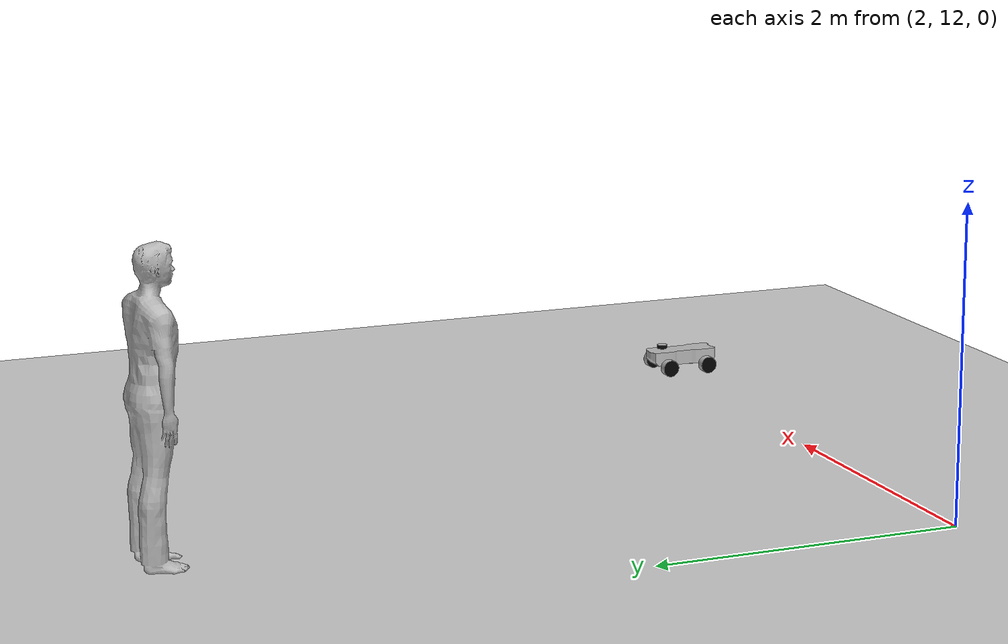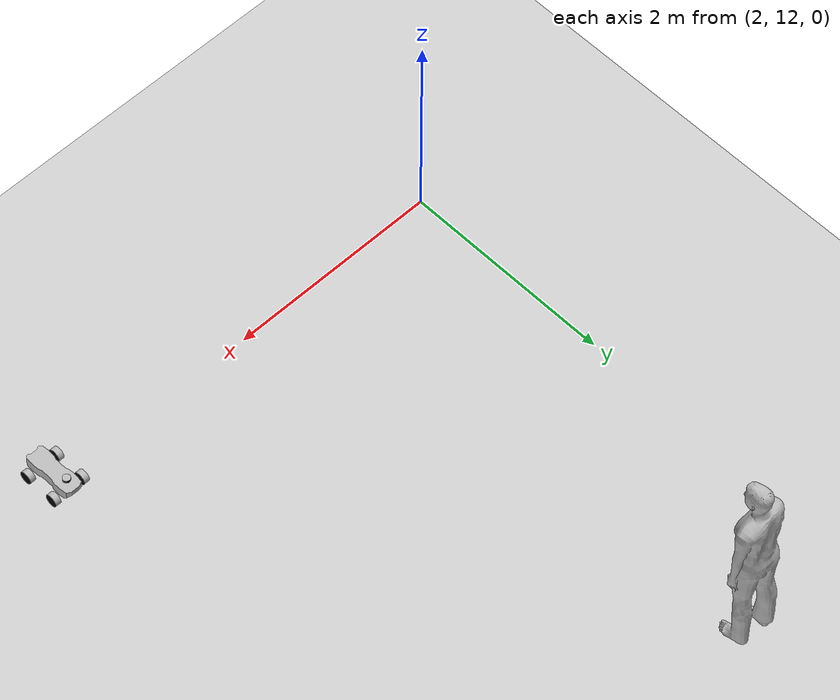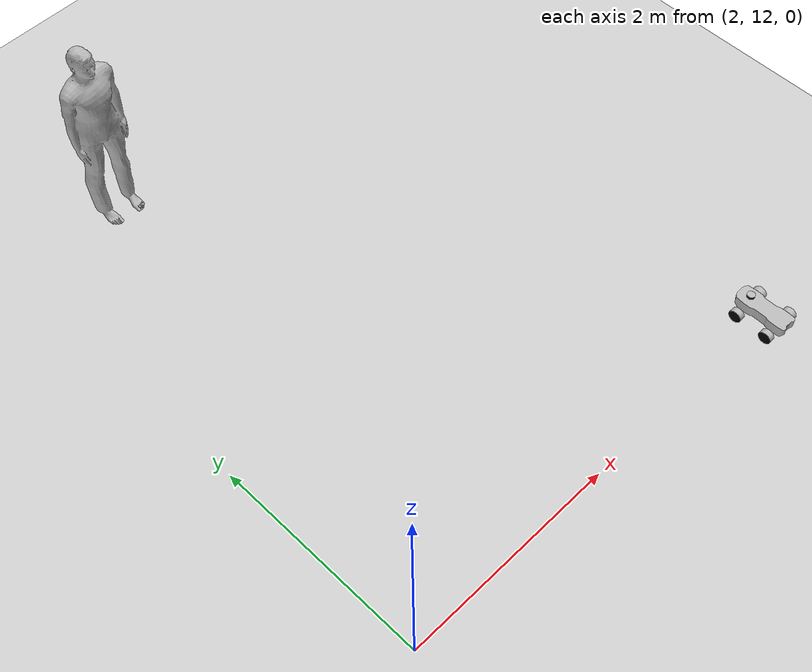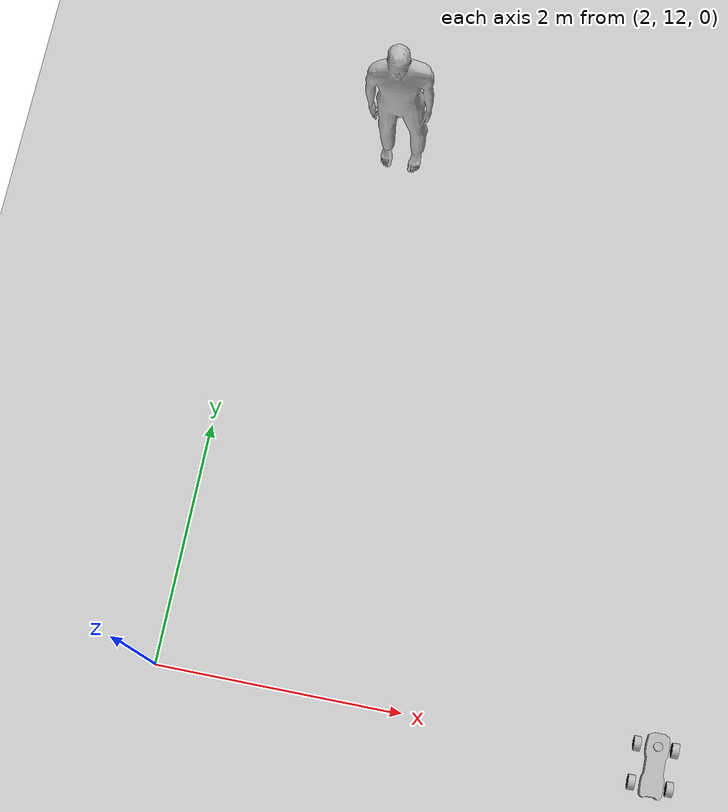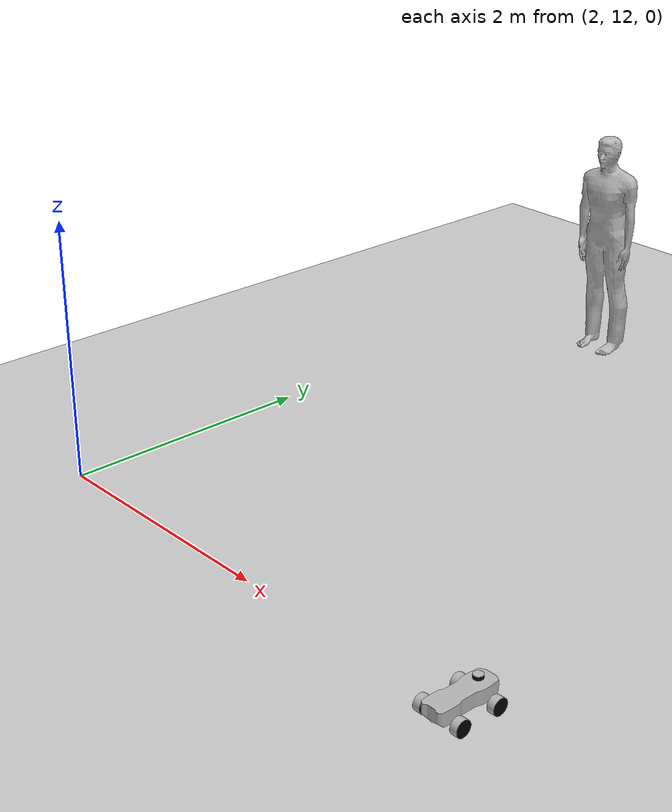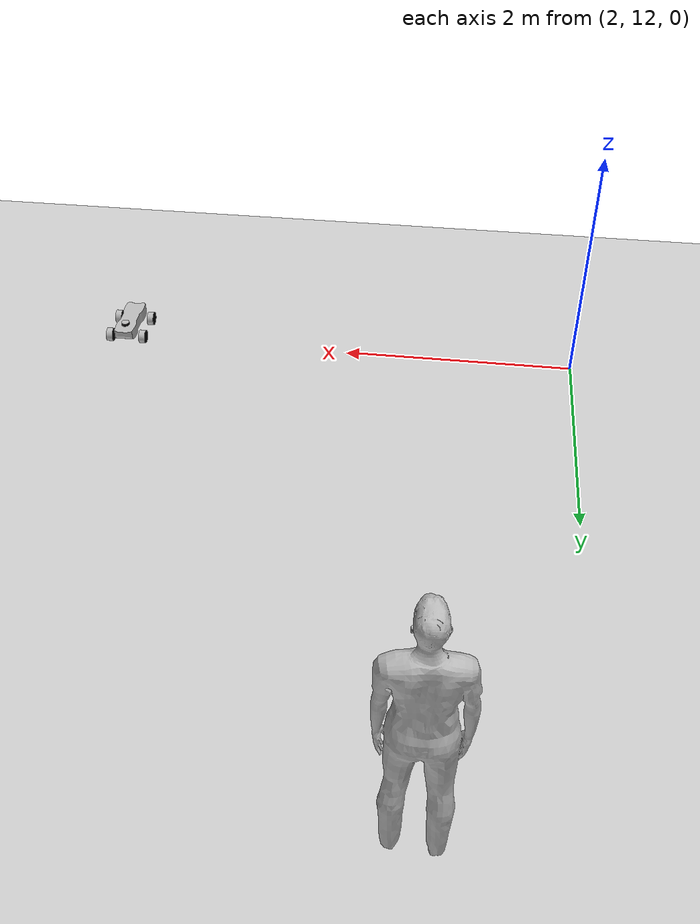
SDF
<sdf version="1.6">
 <world name="default">
  <model name="ground_plane">
   <static>1</static>
   <link name="link">
    <collision name="collision">
     <geometry><plane><normal>0 0 1</normal><size>100 100</size></plane></geometry>
     <surface><friction><ode><mu>100</mu><mu2>50</mu2></ode></friction></surface>
    </collision>
    <visual name="visual">
     <cast_shadows>0</cast_shadows>
     <geometry><plane><normal>0 0 1</normal><size>100 100</size></plane></geometry>
     <material>
      <script><uri>file://media/materials/scripts/gazebo.material</uri><name>Gazebo/Grey</name></script>
     </material>
    </visual>
   </link>
  </model>
  <model name="robot_4">
   <link name="base_link">
    <inertial>
     <mass>5</mass>
     <inertia>
      <ixx>0.0416667</ixx>
      <ixy>0</ixy>
      <ixz>0</ixz>
      <iyy>0.108333</iyy>
      <iyz>0</iyz>
      <izz>0.141667</izz>
     </inertia>
    </inertial>
    <collision name="base_link_collision"><geometry><box><size>0.5 0.3 0.1</size></box></geometry></collision>
    <collision name="base_link_fixed_joint_lump__kinect_link_collision_1">
     <pose>0.145 0 0.17 0 -0 0</pose>
     <geometry><box><size>0.07 0.3 0.09</size></box></geometry>
    </collision>
    <visual name="base_link_visual">
     <geometry>
      <mesh>
       <scale>1 1 1</scale>
       <uri>/home/wind/qingzhou_simulation/src/qingzhou_sim/qingzhou_description/meshes/base_link.dae</uri>
      </mesh>
     </geometry>
    </visual>
    <visual name="base_link_fixed_joint_lump__ydlidar_link_visual_1">
     <pose>0.145 0 0.1285 0 0 -1.57079</pose>
     <geometry>
      <mesh>
       <scale>1 1 1</scale>
       <uri>/home/wind/qingzhou_simulation/src/qingzhou_sim/qingzhou_description/meshes/ydlidar_x4.dae</uri>
      </mesh>
     </geometry>
     <material><script><uri>__default__</uri><name>__default__</name></script></material>
    </visual>
    <sensor name="camera" type="camera">
     <update_rate>30</update_rate>
     <camera name="camera">
      <horizontal_fov>1.39626</horizontal_fov>
      <image><width>800</width><height>800</height><format>R8G8B8</format></image>
      <clip><near>0.02</near><far>300</far></clip>
      <noise><type>gaussian</type><mean>0</mean><stddev>0.007</stddev></noise>
     </camera>
     <plugin name="camera_controller" filename="libgazebo_ros_camera.so">
      <alwaysOn>1</alwaysOn>
      <updateRate>0.0</updateRate>
      <cameraName>camera_link</cameraName>
      <imageTopicName>image_raw</imageTopicName>
      <cameraInfoTopicName>camera_info</cameraInfoTopicName>
      <frameName>camera_link</frameName>
      <hackBaseline>0.07</hackBaseline>
      <distortionK1>0.0</distortionK1>
      <distortionK2>0.0</distortionK2>
      <distortionK3>0.0</distortionK3>
      <distortionT1>0.0</distortionT1>
      <distortionT2>0.0</distortionT2>
      <robotNamespace>/robot_4/</robotNamespace>
     </plugin>
     <pose>0.3 0 0.075 0 -0 0</pose>
    </sensor>
    <sensor name="imu_sensor" type="imu">
     <always_on>1</always_on>
     <update_rate>100</update_rate>
     <visualize>1</visualize>
     <topic>__default_topic__</topic>
     <plugin name="imu_plugin" filename="libgazebo_ros_imu_sensor.so">
      <topicName>imu</topicName>
      <bodyName>imu_link</bodyName>
      <updateRateHZ>100.0</updateRateHZ>
      <gaussianNoise>0.0</gaussianNoise>
      <xyzOffset>0 0 0</xyzOffset>
      <rpyOffset>0 0 0</rpyOffset>
      <frameName>imu_link</frameName>
      <robotNamespace>/robot_4/</robotNamespace>
     </plugin>
     <pose>-0.08 0 0.095 0 0 -1.57079</pose>
    </sensor>
    <sensor name="kinect" type="depth">
     <always_on>1</always_on>
     <update_rate>20</update_rate>
     <camera name="__default__">
      <horizontal_fov>1.0472</horizontal_fov>
      <image><format>R8G8B8</format><width>640</width><height>480</height></image>
      <clip><near>0.05</near><far>300</far></clip>
     </camera>
     <plugin name="kinect_camera_controller" filename="libgazebo_ros_openni_kinect.so">
      <cameraName>kinect</cameraName>
      <alwaysOn>1</alwaysOn>
      <updateRate>10</updateRate>
      <imageTopicName>rgb/image_raw</imageTopicName>
      <depthImageTopicName>depth/image_raw</depthImageTopicName>
      <pointCloudTopicName>depth/points</pointCloudTopicName>
      <cameraInfoTopicName>rgb/camera_info</cameraInfoTopicName>
      <depthImageCameraInfoTopicName>depth/camera_info</depthImageCameraInfoTopicName>
      <frameName>kinect_frame_optical</frameName>
      <baseline>0.1</baseline>
      <distortion_k1>0.0</distortion_k1>
      <distortion_k2>0.0</distortion_k2>
      <distortion_k3>0.0</distortion_k3>
      <distortion_t1>0.0</distortion_t1>
      <distortion_t2>0.0</distortion_t2>
      <pointCloudCutoff>0.4</pointCloudCutoff>
      <robotNamespace>/robot_4/</robotNamespace>
     </plugin>
     <pose>0.145 0 0.17 0 -0 0</pose>
    </sensor>
    <sensor name="rplidar" type="ray">
     <visualize>0</visualize>
     <update_rate>5.5</update_rate>
     <ray>
      <scan>
       <horizontal>
        <samples>360</samples>
        <resolution>1</resolution>
        <min_angle>-3</min_angle>
        <max_angle>3</max_angle>
       </horizontal>
       <vertical><samples>1</samples><min_angle>0</min_angle><max_angle>0</max_angle></vertical>
      </scan>
      <range><min>0.1</min><max>20</max><resolution>0.01</resolution></range>
      <noise><type>gaussian</type><mean>0</mean><stddev>0.01</stddev></noise>
     </ray>
     <plugin name="gazebo_rplidar" filename="libgazebo_ros_laser.so">
      <topicName>scan</topicName>
      <frameName>ydlidar_link</frameName>
      <robotNamespace>/robot_4/</robotNamespace>
     </plugin>
     <pose>0.145 0 0.115 0 -0 0</pose>
    </sensor>
   </link>
   <link name="front_left_steer_link">
    <pose>0.15 0.15 0.13 0 -0 0</pose>
    <inertial>
     <mass>1</mass>
     <inertia>
      <ixx>0.000658333</ixx>
      <ixy>0</ixy>
      <ixz>0</ixz>
      <iyy>0.000658333</iyy>
      <iyz>0</iyz>
      <izz>0.00125</izz>
     </inertia>
    </inertial>
    <collision name="front_left_steer_link_collision">
     <geometry><cylinder><length>0.0001</length><radius>0.0001</radius></cylinder></geometry>
    </collision>
    <visual name="front_left_steer_link_visual">
     <geometry><cylinder><length>0.0001</length><radius>0.0001</radius></cylinder></geometry>
    </visual>
   </link>
   <joint name="front_left_steer_joint" type="revolute">
    <child>front_left_steer_link</child>
    <parent>base_link</parent>
    <axis>
     <xyz>0 0 1</xyz>
     <limit><lower>-0.785398</lower><upper>0.785398</upper><effort>10</effort><velocity>5</velocity></limit>
     <dynamics><spring_reference>0</spring_reference><spring_stiffness>0</spring_stiffness></dynamics>
     <use_parent_model_frame>1</use_parent_model_frame>
    </axis>
   </joint>
   <link name="front_left_wheel_link">
    <pose>0.15 0.15 0 -1.5708 0 0</pose>
    <inertial>
     <mass>1</mass>
     <inertia>
      <ixx>0.00355833</ixx>
      <ixy>0</ixy>
      <ixz>0</ixz>
      <iyy>0.00355833</iyy>
      <iyz>0</iyz>
      <izz>0.00605</izz>
     </inertia>
    </inertial>
    <collision name="front_left_wheel_link_collision">
     <geometry><cylinder><length>0.08</length><radius>0.11</radius></cylinder></geometry>
    </collision>
    <visual name="front_left_wheel_link_visual">
     <geometry>
      <mesh>
       <scale>1 1 1</scale>
       <uri>/home/wind/qingzhou_simulation/src/qingzhou_sim/qingzhou_description/meshes/wheel.dae</uri>
      </mesh>
     </geometry>
    </visual>
   </link>
   <joint name="front_left_wheel_joint" type="revolute">
    <child>front_left_wheel_link</child>
    <parent>front_left_steer_link</parent>
    <axis>
     <xyz>0 1 0</xyz>
     <limit><lower>-1e+16</lower><upper>1e+16</upper></limit>
     <dynamics><spring_reference>0</spring_reference><spring_stiffness>0</spring_stiffness></dynamics>
     <use_parent_model_frame>1</use_parent_model_frame>
    </axis>
   </joint>
   <link name="front_right_steer_link">
    <pose>0.15 -0.15 0.13 0 -0 0</pose>
    <inertial>
     <mass>1</mass>
     <inertia>
      <ixx>0.000658333</ixx>
      <ixy>0</ixy>
      <ixz>0</ixz>
      <iyy>0.000658333</iyy>
      <iyz>0</iyz>
      <izz>0.00125</izz>
     </inertia>
    </inertial>
    <collision name="front_right_steer_link_collision">
     <geometry><cylinder><length>0.0001</length><radius>0.0001</radius></cylinder></geometry>
    </collision>
    <visual name="front_right_steer_link_visual">
     <geometry><cylinder><length>0.0001</length><radius>0.0001</radius></cylinder></geometry>
    </visual>
   </link>
   <joint name="front_right_steer_joint" type="revolute">
    <child>front_right_steer_link</child>
    <parent>base_link</parent>
    <axis>
     <xyz>0 0 1</xyz>
     <limit><lower>-0.785398</lower><upper>0.785398</upper><effort>10</effort><velocity>5</velocity></limit>
     <dynamics><spring_reference>0</spring_reference><spring_stiffness>0</spring_stiffness></dynamics>
     <use_parent_model_frame>1</use_parent_model_frame>
    </axis>
   </joint>
   <link name="front_right_wheel_link">
    <pose>0.15 -0.15 0 -1.5708 0 0</pose>
    <inertial>
     <mass>1</mass>
     <inertia>
      <ixx>0.00355833</ixx>
      <ixy>0</ixy>
      <ixz>0</ixz>
      <iyy>0.00355833</iyy>
      <iyz>0</iyz>
      <izz>0.00605</izz>
     </inertia>
    </inertial>
    <collision name="front_right_wheel_link_collision">
     <geometry><cylinder><length>0.08</length><radius>0.11</radius></cylinder></geometry>
    </collision>
    <visual name="front_right_wheel_link_visual">
     <geometry>
      <mesh>
       <scale>1 1 1</scale>
       <uri>/home/wind/qingzhou_simulation/src/qingzhou_sim/qingzhou_description/meshes/wheel.dae</uri>
      </mesh>
     </geometry>
    </visual>
   </link>
   <joint name="front_right_wheel_joint" type="revolute">
    <child>front_right_wheel_link</child>
    <parent>front_right_steer_link</parent>
    <axis>
     <xyz>0 1 0</xyz>
     <limit><lower>-1e+16</lower><upper>1e+16</upper></limit>
     <dynamics><spring_reference>0</spring_reference><spring_stiffness>0</spring_stiffness></dynamics>
     <use_parent_model_frame>1</use_parent_model_frame>
    </axis>
   </joint>
   <link name="front_steer_link">
    <pose>0.2 0 0.13 0 -0 0</pose>
    <inertial>
     <mass>1</mass>
     <inertia>
      <ixx>0.000658333</ixx>
      <ixy>0</ixy>
      <ixz>0</ixz>
      <iyy>0.000658333</iyy>
      <iyz>0</iyz>
      <izz>0.00125</izz>
     </inertia>
    </inertial>
    <collision name="front_steer_link_collision">
     <geometry><cylinder><length>0.02</length><radius>0.05</radius></cylinder></geometry>
    </collision>
    <visual name="front_steer_link_visual">
     <geometry><cylinder><length>1e-06</length><radius>1e-06</radius></cylinder></geometry>
    </visual>
   </link>
   <joint name="front_steer_joint" type="revolute">
    <child>front_steer_link</child>
    <parent>base_link</parent>
    <axis>
     <xyz>0 0 1</xyz>
     <limit><lower>-3.14159</lower><upper>3.14159</upper><effort>10</effort><velocity>5</velocity></limit>
     <dynamics><spring_reference>0</spring_reference><spring_stiffness>0</spring_stiffness></dynamics>
     <use_parent_model_frame>1</use_parent_model_frame>
    </axis>
   </joint>
   <link name="rear_left_wheel_link">
    <pose>-0.15 0.15 0 -1.5708 0 0</pose>
    <inertial>
     <mass>1</mass>
     <inertia>
      <ixx>0.00355833</ixx>
      <ixy>0</ixy>
      <ixz>0</ixz>
      <iyy>0.00355833</iyy>
      <iyz>0</iyz>
      <izz>0.00605</izz>
     </inertia>
    </inertial>
    <collision name="rear_left_wheel_link_collision">
     <geometry><cylinder><length>0.08</length><radius>0.11</radius></cylinder></geometry>
    </collision>
    <visual name="rear_left_wheel_link_visual">
     <geometry>
      <mesh>
       <scale>1 1 1</scale>
       <uri>/home/wind/qingzhou_simulation/src/qingzhou_sim/qingzhou_description/meshes/wheel.dae</uri>
      </mesh>
     </geometry>
    </visual>
   </link>
   <joint name="rear_left_wheel_joint" type="revolute">
    <child>rear_left_wheel_link</child>
    <parent>base_link</parent>
    <axis>
     <xyz>0 1 0</xyz>
     <limit><lower>-1e+16</lower><upper>1e+16</upper></limit>
     <dynamics><spring_reference>0</spring_reference><spring_stiffness>0</spring_stiffness></dynamics>
     <use_parent_model_frame>1</use_parent_model_frame>
    </axis>
   </joint>
   <link name="rear_right_wheel_link">
    <pose>-0.15 -0.15 0 -1.5708 0 0</pose>
    <inertial>
     <mass>1</mass>
     <inertia>
      <ixx>0.00355833</ixx>
      <ixy>0</ixy>
      <ixz>0</ixz>
      <iyy>0.00355833</iyy>
      <iyz>0</iyz>
      <izz>0.00605</izz>
     </inertia>
    </inertial>
    <collision name="rear_right_wheel_link_collision">
     <geometry><cylinder><length>0.08</length><radius>0.11</radius></cylinder></geometry>
    </collision>
    <visual name="rear_right_wheel_link_visual">
     <geometry>
      <mesh>
       <scale>1 1 1</scale>
       <uri>/home/wind/qingzhou_simulation/src/qingzhou_sim/qingzhou_description/meshes/wheel.dae</uri>
      </mesh>
     </geometry>
    </visual>
   </link>
   <joint name="rear_right_wheel_joint" type="revolute">
    <child>rear_right_wheel_link</child>
    <parent>base_link</parent>
    <axis>
     <xyz>0 1 0</xyz>
     <limit><lower>-1e+16</lower><upper>1e+16</upper></limit>
     <dynamics><spring_reference>0</spring_reference><spring_stiffness>0</spring_stiffness></dynamics>
     <use_parent_model_frame>1</use_parent_model_frame>
    </axis>
   </joint>
   <link name="rear_wheel_link">
    <pose>-0.2 0 0 -1.5708 0 0</pose>
    <inertial>
     <mass>0.03125</mass>
     <inertia>
      <ixx>1.00749e-05</ixx>
      <ixy>0</ixy>
      <ixz>0</ixz>
      <iyy>1.00749e-05</iyy>
      <iyz>0</iyz>
      <izz>1.18164e-05</izz>
     </inertia>
    </inertial>
    <collision name="rear_wheel_link_collision">
     <geometry><cylinder><length>0.0001</length><radius>0.0001</radius></cylinder></geometry>
    </collision>
    <visual name="rear_wheel_link_visual">
     <geometry><cylinder><length>0.0001</length><radius>0.0001</radius></cylinder></geometry>
    </visual>
   </link>
   <joint name="rear_wheel_joint" type="revolute">
    <child>rear_wheel_link</child>
    <parent>base_link</parent>
    <axis>
     <xyz>0 1 0</xyz>
     <limit><lower>-1e+16</lower><upper>1e+16</upper></limit>
     <dynamics><spring_reference>0</spring_reference><spring_stiffness>0</spring_stiffness></dynamics>
     <use_parent_model_frame>1</use_parent_model_frame>
    </axis>
   </joint>
   <static>0</static>
   <plugin name="gazebo_ros_control" filename="libgazebo_ros_control.so">
    <robotNamespace>/robot_4/</robotNamespace>
    <robotSimType>steer_bot_hardware_gazebo/SteerBotHardwareGazebo</robotSimType>
    <legacyModeNS>0</legacyModeNS>
   </plugin>
   <pose>6.00108 11.9827 0.11 -2e-06 -0 1.57394</pose>
  </model>
  <model name="person_standing">
   <link name="link">
    <inertial>
     <pose>0 -0.1 0.95 0 -0 0</pose>
     <mass>80</mass>
     <inertia><ixx>24.88</ixx><ixy>0</ixy><ixz>0</ixz><iyy>25.73</iyy><iyz>0</iyz><izz>2.48</izz></inertia>
    </inertial>
    <collision name="bottom">
     <pose>0 -0.1 0.01 0 -0 0</pose>
     <geometry><box><size>0.5 0.35 0.02</size></box></geometry>
    </collision>
    <collision name="person">
     <pose>0 0 0.02 0.04 -0 0</pose>
     <geometry><mesh><uri>model://person_standing/meshes/standing.dae</uri></mesh></geometry>
    </collision>
    <visual name="visual">
     <pose>0 0 0.02 0.04 -0 0</pose>
     <geometry><mesh><uri>model://person_standing/meshes/standing.dae</uri></mesh></geometry>
    </visual>
   </link>
   <pose>3.05608 16.7614 6.4e-05 0.000234 -2e-06 0.006968</pose>
  </model>
 </world>
</sdf>
